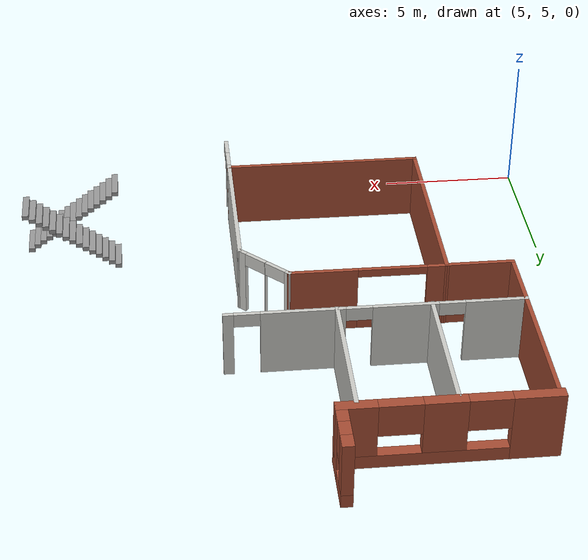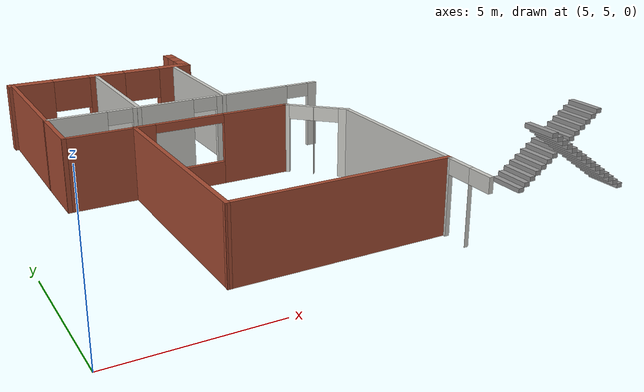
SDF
<sdf version="1.6">
 <model name="CVSSP">
  <pose>15.8584 5.8407 0 0 -0 0</pose>
  <link name="Stairs_0">
   <visual name="Stairs_0_Visual_0">
    <pose>5.00304 3.34162 0.083333 0 -0 1.5708</pose>
    <geometry><box><size>1.32315 0.233333 0.166667</size></box></geometry>
    <material>
     <script><uri>file://media/materials/scripts/gazebo.material</uri><name>Gazebo/Grey</name></script>
     <ambient>1 1 1 1</ambient>
    </material>
   </visual>
   <collision name="Stairs_0_Collision_0">
    <geometry><box><size>1.32315 0.233333 0.166667</size></box></geometry>
    <pose>5.00304 3.34162 0.083333 0 -0 1.5708</pose>
   </collision>
   <visual name="Stairs_0_Visual_1">
    <pose>5.23638 3.34162 0.25 0 -0 1.5708</pose>
    <geometry><box><size>1.32315 0.233333 0.166667</size></box></geometry>
    <material>
     <script><uri>file://media/materials/scripts/gazebo.material</uri><name>Gazebo/Grey</name></script>
     <ambient>1 1 1 1</ambient>
    </material>
   </visual>
   <collision name="Stairs_0_Collision_1">
    <geometry><box><size>1.32315 0.233333 0.166667</size></box></geometry>
    <pose>5.23638 3.34162 0.25 0 -0 1.5708</pose>
   </collision>
   <visual name="Stairs_0_Visual_2">
    <pose>5.46971 3.34162 0.416667 0 -0 1.5708</pose>
    <geometry><box><size>1.32315 0.233333 0.166667</size></box></geometry>
    <material>
     <script><uri>file://media/materials/scripts/gazebo.material</uri><name>Gazebo/Grey</name></script>
     <ambient>1 1 1 1</ambient>
    </material>
   </visual>
   <collision name="Stairs_0_Collision_2">
    <geometry><box><size>1.32315 0.233333 0.166667</size></box></geometry>
    <pose>5.46971 3.34162 0.416667 0 -0 1.5708</pose>
   </collision>
   <visual name="Stairs_0_Visual_3">
    <pose>5.70304 3.34162 0.583333 0 -0 1.5708</pose>
    <geometry><box><size>1.32315 0.233333 0.166667</size></box></geometry>
    <material>
     <script><uri>file://media/materials/scripts/gazebo.material</uri><name>Gazebo/Grey</name></script>
     <ambient>1 1 1 1</ambient>
    </material>
   </visual>
   <collision name="Stairs_0_Collision_3">
    <geometry><box><size>1.32315 0.233333 0.166667</size></box></geometry>
    <pose>5.70304 3.34162 0.583333 0 -0 1.5708</pose>
   </collision>
   <visual name="Stairs_0_Visual_4">
    <pose>5.93638 3.34162 0.75 0 -0 1.5708</pose>
    <geometry><box><size>1.32315 0.233333 0.166667</size></box></geometry>
    <material>
     <script><uri>file://media/materials/scripts/gazebo.material</uri><name>Gazebo/Grey</name></script>
     <ambient>1 1 1 1</ambient>
    </material>
   </visual>
   <collision name="Stairs_0_Collision_4">
    <geometry><box><size>1.32315 0.233333 0.166667</size></box></geometry>
    <pose>5.93638 3.34162 0.75 0 -0 1.5708</pose>
   </collision>
   <visual name="Stairs_0_Visual_5">
    <pose>6.16971 3.34162 0.916667 0 -0 1.5708</pose>
    <geometry><box><size>1.32315 0.233333 0.166667</size></box></geometry>
    <material>
     <script><uri>file://media/materials/scripts/gazebo.material</uri><name>Gazebo/Grey</name></script>
     <ambient>1 1 1 1</ambient>
    </material>
   </visual>
   <collision name="Stairs_0_Collision_5">
    <geometry><box><size>1.32315 0.233333 0.166667</size></box></geometry>
    <pose>6.16971 3.34162 0.916667 0 -0 1.5708</pose>
   </collision>
   <visual name="Stairs_0_Visual_6">
    <pose>6.40304 3.34162 1.08333 0 -0 1.5708</pose>
    <geometry><box><size>1.32315 0.233333 0.166667</size></box></geometry>
    <material>
     <script><uri>file://media/materials/scripts/gazebo.material</uri><name>Gazebo/Grey</name></script>
     <ambient>1 1 1 1</ambient>
    </material>
   </visual>
   <collision name="Stairs_0_Collision_6">
    <geometry><box><size>1.32315 0.233333 0.166667</size></box></geometry>
    <pose>6.40304 3.34162 1.08333 0 -0 1.5708</pose>
   </collision>
   <visual name="Stairs_0_Visual_7">
    <pose>6.63638 3.34162 1.25 0 -0 1.5708</pose>
    <geometry><box><size>1.32315 0.233333 0.166667</size></box></geometry>
    <material>
     <script><uri>file://media/materials/scripts/gazebo.material</uri><name>Gazebo/Grey</name></script>
     <ambient>1 1 1 1</ambient>
    </material>
   </visual>
   <collision name="Stairs_0_Collision_7">
    <geometry><box><size>1.32315 0.233333 0.166667</size></box></geometry>
    <pose>6.63638 3.34162 1.25 0 -0 1.5708</pose>
   </collision>
   <visual name="Stairs_0_Visual_8">
    <pose>6.86971 3.34162 1.41667 0 -0 1.5708</pose>
    <geometry><box><size>1.32315 0.233333 0.166667</size></box></geometry>
    <material>
     <script><uri>file://media/materials/scripts/gazebo.material</uri><name>Gazebo/Grey</name></script>
     <ambient>1 1 1 1</ambient>
    </material>
   </visual>
   <collision name="Stairs_0_Collision_8">
    <geometry><box><size>1.32315 0.233333 0.166667</size></box></geometry>
    <pose>6.86971 3.34162 1.41667 0 -0 1.5708</pose>
   </collision>
   <visual name="Stairs_0_Visual_9">
    <pose>7.10304 3.34162 1.58333 0 -0 1.5708</pose>
    <geometry><box><size>1.32315 0.233333 0.166667</size></box></geometry>
    <material>
     <script><uri>file://media/materials/scripts/gazebo.material</uri><name>Gazebo/Grey</name></script>
     <ambient>1 1 1 1</ambient>
    </material>
   </visual>
   <collision name="Stairs_0_Collision_9">
    <geometry><box><size>1.32315 0.233333 0.166667</size></box></geometry>
    <pose>7.10304 3.34162 1.58333 0 -0 1.5708</pose>
   </collision>
   <visual name="Stairs_0_Visual_10">
    <pose>7.33638 3.34162 1.75 0 -0 1.5708</pose>
    <geometry><box><size>1.32315 0.233333 0.166667</size></box></geometry>
    <material>
     <script><uri>file://media/materials/scripts/gazebo.material</uri><name>Gazebo/Grey</name></script>
     <ambient>1 1 1 1</ambient>
    </material>
   </visual>
   <collision name="Stairs_0_Collision_10">
    <geometry><box><size>1.32315 0.233333 0.166667</size></box></geometry>
    <pose>7.33638 3.34162 1.75 0 -0 1.5708</pose>
   </collision>
   <visual name="Stairs_0_Visual_11">
    <pose>7.56971 3.34162 1.91667 0 -0 1.5708</pose>
    <geometry><box><size>1.32315 0.233333 0.166667</size></box></geometry>
    <material>
     <script><uri>file://media/materials/scripts/gazebo.material</uri><name>Gazebo/Grey</name></script>
     <ambient>1 1 1 1</ambient>
    </material>
   </visual>
   <collision name="Stairs_0_Collision_11">
    <geometry><box><size>1.32315 0.233333 0.166667</size></box></geometry>
    <pose>7.56971 3.34162 1.91667 0 -0 1.5708</pose>
   </collision>
   <visual name="Stairs_0_Visual_12">
    <pose>7.80304 3.34162 2.08333 0 -0 1.5708</pose>
    <geometry><box><size>1.32315 0.233333 0.166667</size></box></geometry>
    <material>
     <script><uri>file://media/materials/scripts/gazebo.material</uri><name>Gazebo/Grey</name></script>
     <ambient>1 1 1 1</ambient>
    </material>
   </visual>
   <collision name="Stairs_0_Collision_12">
    <geometry><box><size>1.32315 0.233333 0.166667</size></box></geometry>
    <pose>7.80304 3.34162 2.08333 0 -0 1.5708</pose>
   </collision>
   <visual name="Stairs_0_Visual_13">
    <pose>8.03638 3.34162 2.25 0 -0 1.5708</pose>
    <geometry><box><size>1.32315 0.233333 0.166667</size></box></geometry>
    <material>
     <script><uri>file://media/materials/scripts/gazebo.material</uri><name>Gazebo/Grey</name></script>
     <ambient>1 1 1 1</ambient>
    </material>
   </visual>
   <collision name="Stairs_0_Collision_13">
    <geometry><box><size>1.32315 0.233333 0.166667</size></box></geometry>
    <pose>8.03638 3.34162 2.25 0 -0 1.5708</pose>
   </collision>
   <visual name="Stairs_0_Visual_14">
    <pose>8.26971 3.34162 2.41667 0 -0 1.5708</pose>
    <geometry><box><size>1.32315 0.233333 0.166667</size></box></geometry>
    <material>
     <script><uri>file://media/materials/scripts/gazebo.material</uri><name>Gazebo/Grey</name></script>
     <ambient>1 1 1 1</ambient>
    </material>
   </visual>
   <collision name="Stairs_0_Collision_14">
    <geometry><box><size>1.32315 0.233333 0.166667</size></box></geometry>
    <pose>8.26971 3.34162 2.41667 0 -0 1.5708</pose>
   </collision>
  </link>
  <link name="Stairs_1">
   <visual name="Stairs_1_Visual_0">
    <pose>8.27065 2.04368 0.083333 0 -0 -1.5708</pose>
    <geometry><box><size>1.279 0.233333 0.166667</size></box></geometry>
    <material>
     <script><uri>file://media/materials/scripts/gazebo.material</uri><name>Gazebo/Grey</name></script>
     <ambient>1 1 1 1</ambient>
    </material>
   </visual>
   <collision name="Stairs_1_Collision_0">
    <geometry><box><size>1.279 0.233333 0.166667</size></box></geometry>
    <pose>8.27065 2.04368 0.083333 0 -0 -1.5708</pose>
   </collision>
   <visual name="Stairs_1_Visual_1">
    <pose>8.03732 2.04368 0.25 0 -0 -1.5708</pose>
    <geometry><box><size>1.279 0.233333 0.166667</size></box></geometry>
    <material>
     <script><uri>file://media/materials/scripts/gazebo.material</uri><name>Gazebo/Grey</name></script>
     <ambient>1 1 1 1</ambient>
    </material>
   </visual>
   <collision name="Stairs_1_Collision_1">
    <geometry><box><size>1.279 0.233333 0.166667</size></box></geometry>
    <pose>8.03732 2.04368 0.25 0 -0 -1.5708</pose>
   </collision>
   <visual name="Stairs_1_Visual_2">
    <pose>7.80398 2.04368 0.416667 0 -0 -1.5708</pose>
    <geometry><box><size>1.279 0.233333 0.166667</size></box></geometry>
    <material>
     <script><uri>file://media/materials/scripts/gazebo.material</uri><name>Gazebo/Grey</name></script>
     <ambient>1 1 1 1</ambient>
    </material>
   </visual>
   <collision name="Stairs_1_Collision_2">
    <geometry><box><size>1.279 0.233333 0.166667</size></box></geometry>
    <pose>7.80398 2.04368 0.416667 0 -0 -1.5708</pose>
   </collision>
   <visual name="Stairs_1_Visual_3">
    <pose>7.57065 2.04368 0.583333 0 -0 -1.5708</pose>
    <geometry><box><size>1.279 0.233333 0.166667</size></box></geometry>
    <material>
     <script><uri>file://media/materials/scripts/gazebo.material</uri><name>Gazebo/Grey</name></script>
     <ambient>1 1 1 1</ambient>
    </material>
   </visual>
   <collision name="Stairs_1_Collision_3">
    <geometry><box><size>1.279 0.233333 0.166667</size></box></geometry>
    <pose>7.57065 2.04368 0.583333 0 -0 -1.5708</pose>
   </collision>
   <visual name="Stairs_1_Visual_4">
    <pose>7.33732 2.04368 0.75 0 -0 -1.5708</pose>
    <geometry><box><size>1.279 0.233333 0.166667</size></box></geometry>
    <material>
     <script><uri>file://media/materials/scripts/gazebo.material</uri><name>Gazebo/Grey</name></script>
     <ambient>1 1 1 1</ambient>
    </material>
   </visual>
   <collision name="Stairs_1_Collision_4">
    <geometry><box><size>1.279 0.233333 0.166667</size></box></geometry>
    <pose>7.33732 2.04368 0.75 0 -0 -1.5708</pose>
   </collision>
   <visual name="Stairs_1_Visual_5">
    <pose>7.10398 2.04368 0.916667 0 -0 -1.5708</pose>
    <geometry><box><size>1.279 0.233333 0.166667</size></box></geometry>
    <material>
     <script><uri>file://media/materials/scripts/gazebo.material</uri><name>Gazebo/Grey</name></script>
     <ambient>1 1 1 1</ambient>
    </material>
   </visual>
   <collision name="Stairs_1_Collision_5">
    <geometry><box><size>1.279 0.233333 0.166667</size></box></geometry>
    <pose>7.10398 2.04368 0.916667 0 -0 -1.5708</pose>
   </collision>
   <visual name="Stairs_1_Visual_6">
    <pose>6.87065 2.04368 1.08333 0 -0 -1.5708</pose>
    <geometry><box><size>1.279 0.233333 0.166667</size></box></geometry>
    <material>
     <script><uri>file://media/materials/scripts/gazebo.material</uri><name>Gazebo/Grey</name></script>
     <ambient>1 1 1 1</ambient>
    </material>
   </visual>
   <collision name="Stairs_1_Collision_6">
    <geometry><box><size>1.279 0.233333 0.166667</size></box></geometry>
    <pose>6.87065 2.04368 1.08333 0 -0 -1.5708</pose>
   </collision>
   <visual name="Stairs_1_Visual_7">
    <pose>6.63732 2.04368 1.25 0 -0 -1.5708</pose>
    <geometry><box><size>1.279 0.233333 0.166667</size></box></geometry>
    <material>
     <script><uri>file://media/materials/scripts/gazebo.material</uri><name>Gazebo/Grey</name></script>
     <ambient>1 1 1 1</ambient>
    </material>
   </visual>
   <collision name="Stairs_1_Collision_7">
    <geometry><box><size>1.279 0.233333 0.166667</size></box></geometry>
    <pose>6.63732 2.04368 1.25 0 -0 -1.5708</pose>
   </collision>
   <visual name="Stairs_1_Visual_8">
    <pose>6.40398 2.04368 1.41667 0 -0 -1.5708</pose>
    <geometry><box><size>1.279 0.233333 0.166667</size></box></geometry>
    <material>
     <script><uri>file://media/materials/scripts/gazebo.material</uri><name>Gazebo/Grey</name></script>
     <ambient>1 1 1 1</ambient>
    </material>
   </visual>
   <collision name="Stairs_1_Collision_8">
    <geometry><box><size>1.279 0.233333 0.166667</size></box></geometry>
    <pose>6.40398 2.04368 1.41667 0 -0 -1.5708</pose>
   </collision>
   <visual name="Stairs_1_Visual_9">
    <pose>6.17065 2.04368 1.58333 0 -0 -1.5708</pose>
    <geometry><box><size>1.279 0.233333 0.166667</size></box></geometry>
    <material>
     <script><uri>file://media/materials/scripts/gazebo.material</uri><name>Gazebo/Grey</name></script>
     <ambient>1 1 1 1</ambient>
    </material>
   </visual>
   <collision name="Stairs_1_Collision_9">
    <geometry><box><size>1.279 0.233333 0.166667</size></box></geometry>
    <pose>6.17065 2.04368 1.58333 0 -0 -1.5708</pose>
   </collision>
   <visual name="Stairs_1_Visual_10">
    <pose>5.93732 2.04368 1.75 0 -0 -1.5708</pose>
    <geometry><box><size>1.279 0.233333 0.166667</size></box></geometry>
    <material>
     <script><uri>file://media/materials/scripts/gazebo.material</uri><name>Gazebo/Grey</name></script>
     <ambient>1 1 1 1</ambient>
    </material>
   </visual>
   <collision name="Stairs_1_Collision_10">
    <geometry><box><size>1.279 0.233333 0.166667</size></box></geometry>
    <pose>5.93732 2.04368 1.75 0 -0 -1.5708</pose>
   </collision>
   <visual name="Stairs_1_Visual_11">
    <pose>5.70398 2.04368 1.91667 0 -0 -1.5708</pose>
    <geometry><box><size>1.279 0.233333 0.166667</size></box></geometry>
    <material>
     <script><uri>file://media/materials/scripts/gazebo.material</uri><name>Gazebo/Grey</name></script>
     <ambient>1 1 1 1</ambient>
    </material>
   </visual>
   <collision name="Stairs_1_Collision_11">
    <geometry><box><size>1.279 0.233333 0.166667</size></box></geometry>
    <pose>5.70398 2.04368 1.91667 0 -0 -1.5708</pose>
   </collision>
   <visual name="Stairs_1_Visual_12">
    <pose>5.47065 2.04368 2.08333 0 -0 -1.5708</pose>
    <geometry><box><size>1.279 0.233333 0.166667</size></box></geometry>
    <material>
     <script><uri>file://media/materials/scripts/gazebo.material</uri><name>Gazebo/Grey</name></script>
     <ambient>1 1 1 1</ambient>
    </material>
   </visual>
   <collision name="Stairs_1_Collision_12">
    <geometry><box><size>1.279 0.233333 0.166667</size></box></geometry>
    <pose>5.47065 2.04368 2.08333 0 -0 -1.5708</pose>
   </collision>
   <visual name="Stairs_1_Visual_13">
    <pose>5.23732 2.04368 2.25 0 -0 -1.5708</pose>
    <geometry><box><size>1.279 0.233333 0.166667</size></box></geometry>
    <material>
     <script><uri>file://media/materials/scripts/gazebo.material</uri><name>Gazebo/Grey</name></script>
     <ambient>1 1 1 1</ambient>
    </material>
   </visual>
   <collision name="Stairs_1_Collision_13">
    <geometry><box><size>1.279 0.233333 0.166667</size></box></geometry>
    <pose>5.23732 2.04368 2.25 0 -0 -1.5708</pose>
   </collision>
   <visual name="Stairs_1_Visual_14">
    <pose>5.00398 2.04368 2.41667 0 -0 -1.5708</pose>
    <geometry><box><size>1.279 0.233333 0.166667</size></box></geometry>
    <material>
     <script><uri>file://media/materials/scripts/gazebo.material</uri><name>Gazebo/Grey</name></script>
     <ambient>1 1 1 1</ambient>
    </material>
   </visual>
   <collision name="Stairs_1_Collision_14">
    <geometry><box><size>1.279 0.233333 0.166667</size></box></geometry>
    <pose>5.00398 2.04368 2.41667 0 -0 -1.5708</pose>
   </collision>
  </link>
  <link name="Wall_0">
   <collision name="Wall_0_Collision">
    <geometry><box><size>7.30534 0.15 2.5</size></box></geometry>
    <pose>0 0 1.25 0 -0 0</pose>
   </collision>
   <visual name="Wall_0_Visual">
    <pose>0 0 1.25 0 -0 0</pose>
    <geometry><box><size>7.30534 0.15 2.5</size></box></geometry>
    <material>
     <script><uri>file://media/materials/scripts/gazebo.material</uri><name>Gazebo/Bricks</name></script>
     <ambient>1 1 1 1</ambient>
    </material>
   </visual>
   <pose>-6.50608 4.87105 0 0 0 -1.57292</pose>
  </link>
  <link name="Wall_1">
   <collision name="Wall_1_Collision">
    <geometry><box><size>7.29881 0.15 2.5</size></box></geometry>
    <pose>0 0 1.25 0 -0 0</pose>
   </collision>
   <visual name="Wall_1_Visual">
    <pose>0 0 1.25 0 -0 0</pose>
    <geometry><box><size>7.29881 0.15 2.5</size></box></geometry>
    <material>
     <script><uri>file://media/materials/scripts/gazebo.material</uri><name>Gazebo/Bricks</name></script>
     <ambient>1 1 1 1</ambient>
    </material>
   </visual>
   <pose>-2.93929 1.28682 0 0 0 -0.001839</pose>
  </link>
  <link name="Wall_134">
   <pose>-3.71148 10.6102 0 0 -0 3.14159</pose>
   <visual name="Wall_134_Visual_0">
    <pose>-5.01383 0 1.25 0 -0 0</pose>
    <geometry><box><size>0.367986 0.15 2.5</size></box></geometry>
    <material>
     <script><uri>file://media/materials/scripts/gazebo.material</uri><name>Gazebo/CeilingTiled</name></script>
     <ambient>1 1 1 1</ambient>
    </material>
   </visual>
   <collision name="Wall_134_Collision_0">
    <geometry><box><size>0.367986 0.15 2.5</size></box></geometry>
    <pose>-5.01383 0 1.25 0 -0 0</pose>
   </collision>
   <visual name="Wall_134_Visual_1">
    <pose>-2.48136 0 1.25 0 -0 0</pose>
    <geometry><box><size>2.89696 0.15 2.5</size></box></geometry>
    <material>
     <script><uri>file://media/materials/scripts/gazebo.material</uri><name>Gazebo/CeilingTiled</name></script>
     <ambient>1 1 1 1</ambient>
    </material>
   </visual>
   <collision name="Wall_134_Collision_1">
    <geometry><box><size>2.89696 0.15 2.5</size></box></geometry>
    <pose>-2.48136 0 1.25 0 -0 0</pose>
   </collision>
   <visual name="Wall_134_Visual_2">
    <pose>1.00237 0 1.25 0 -0 0</pose>
    <geometry><box><size>2.27049 0.15 2.5</size></box></geometry>
    <material>
     <script><uri>file://media/materials/scripts/gazebo.material</uri><name>Gazebo/CeilingTiled</name></script>
     <ambient>1 1 1 1</ambient>
    </material>
   </visual>
   <collision name="Wall_134_Collision_2">
    <geometry><box><size>2.27049 0.15 2.5</size></box></geometry>
    <pose>1.00237 0 1.25 0 -0 0</pose>
   </collision>
   <visual name="Wall_134_Visual_3">
    <pose>4.11772 0 1.25 0 -0 0</pose>
    <geometry><box><size>2.16021 0.15 2.5</size></box></geometry>
    <material>
     <script><uri>file://media/materials/scripts/gazebo.material</uri><name>Gazebo/CeilingTiled</name></script>
     <ambient>1 1 1 1</ambient>
    </material>
   </visual>
   <collision name="Wall_134_Collision_3">
    <geometry><box><size>2.16021 0.15 2.5</size></box></geometry>
    <pose>4.11772 0 1.25 0 -0 0</pose>
   </collision>
   <visual name="Wall_134_Visual_4">
    <pose>-4.37984 0 2.25 0 -0 0</pose>
    <geometry><box><size>0.9 0.15 0.5</size></box></geometry>
    <material>
     <script><uri>file://media/materials/scripts/gazebo.material</uri><name>Gazebo/CeilingTiled</name></script>
     <ambient>1 1 1 1</ambient>
    </material>
   </visual>
   <collision name="Wall_134_Collision_4">
    <geometry><box><size>0.9 0.15 0.5</size></box></geometry>
    <pose>-4.37984 0 2.25 0 -0 0</pose>
   </collision>
   <visual name="Wall_134_Visual_5">
    <pose>-0.582875 0 2.25 0 -0 0</pose>
    <geometry><box><size>0.9 0.15 0.5</size></box></geometry>
    <material>
     <script><uri>file://media/materials/scripts/gazebo.material</uri><name>Gazebo/CeilingTiled</name></script>
     <ambient>1 1 1 1</ambient>
    </material>
   </visual>
   <collision name="Wall_134_Collision_5">
    <geometry><box><size>0.9 0.15 0.5</size></box></geometry>
    <pose>-0.582875 0 2.25 0 -0 0</pose>
   </collision>
   <visual name="Wall_134_Visual_6">
    <pose>2.58761 0 2.25 0 -0 0</pose>
    <geometry><box><size>0.9 0.15 0.5</size></box></geometry>
    <material>
     <script><uri>file://media/materials/scripts/gazebo.material</uri><name>Gazebo/CeilingTiled</name></script>
     <ambient>1 1 1 1</ambient>
    </material>
   </visual>
   <collision name="Wall_134_Collision_6">
    <geometry><box><size>0.9 0.15 0.5</size></box></geometry>
    <pose>2.58761 0 2.25 0 -0 0</pose>
   </collision>
  </link>
  <link name="Wall_135">
   <collision name="Wall_135_Collision">
    <geometry><box><size>5.14565 0.15 2.5</size></box></geometry>
    <pose>0 0 1.25 0 -0 0</pose>
   </collision>
   <visual name="Wall_135_Visual">
    <pose>0 0 1.25 0 -0 0</pose>
    <geometry><box><size>5.14565 0.15 2.5</size></box></geometry>
    <material>
     <script><uri>file://media/materials/scripts/gazebo.material</uri><name>Gazebo/Bricks</name></script>
     <ambient>1 1 1 1</ambient>
    </material>
   </visual>
   <pose>-8.82585 13.1077 0 0 -0 1.56741</pose>
  </link>
  <link name="Wall_136">
   <pose>-5.3489 15.6053 0 0 -0 0</pose>
   <visual name="Wall_136_Visual_0">
    <pose>-2.82211 0 1.25 0 -0 0</pose>
    <geometry><box><size>1.69277 0.4 2.5</size></box></geometry>
    <material>
     <script><uri>file://media/materials/scripts/gazebo.material</uri><name>Gazebo/Bricks</name></script>
     <ambient>1 1 1 1</ambient>
    </material>
   </visual>
   <collision name="Wall_136_Collision_0">
    <geometry><box><size>1.69277 0.4 2.5</size></box></geometry>
    <pose>-2.82211 0 1.25 0 -0 0</pose>
   </collision>
   <visual name="Wall_136_Visual_1">
    <pose>0.846386 0 0.25 0 -0 0</pose>
    <geometry><box><size>5.64423 0.4 0.5</size></box></geometry>
    <material>
     <script><uri>file://media/materials/scripts/gazebo.material</uri><name>Gazebo/Bricks</name></script>
     <ambient>1 1 1 1</ambient>
    </material>
   </visual>
   <collision name="Wall_136_Collision_1">
    <geometry><box><size>5.64423 0.4 0.5</size></box></geometry>
    <pose>0.846386 0 0.25 0 -0 0</pose>
   </collision>
   <visual name="Wall_136_Visual_2">
    <pose>0.146512 0 1.5 0 -0 0</pose>
    <geometry><box><size>1.42709 0.4 2</size></box></geometry>
    <material>
     <script><uri>file://media/materials/scripts/gazebo.material</uri><name>Gazebo/Bricks</name></script>
     <ambient>1 1 1 1</ambient>
    </material>
   </visual>
   <collision name="Wall_136_Collision_2">
    <geometry><box><size>1.42709 0.4 2</size></box></geometry>
    <pose>0.146512 0 1.5 0 -0 0</pose>
   </collision>
   <visual name="Wall_136_Visual_3">
    <pose>2.98602 0 1.5 0 -0 0</pose>
    <geometry><box><size>1.36497 0.4 2</size></box></geometry>
    <material>
     <script><uri>file://media/materials/scripts/gazebo.material</uri><name>Gazebo/Bricks</name></script>
     <ambient>1 1 1 1</ambient>
    </material>
   </visual>
   <collision name="Wall_136_Collision_3">
    <geometry><box><size>1.36497 0.4 2</size></box></geometry>
    <pose>2.98602 0 1.5 0 -0 0</pose>
   </collision>
   <visual name="Wall_136_Visual_4">
    <pose>-1.27138 0 1.9 0 -0 0</pose>
    <geometry><box><size>1.4087 0.4 1.2</size></box></geometry>
    <material>
     <script><uri>file://media/materials/scripts/gazebo.material</uri><name>Gazebo/Bricks</name></script>
     <ambient>1 1 1 1</ambient>
    </material>
   </visual>
   <collision name="Wall_136_Collision_4">
    <geometry><box><size>1.4087 0.4 1.2</size></box></geometry>
    <pose>-1.27138 0 1.9 0 -0 0</pose>
   </collision>
   <visual name="Wall_136_Visual_5">
    <pose>1.5818 0 1.9 0 -0 0</pose>
    <geometry><box><size>1.44348 0.4 1.2</size></box></geometry>
    <material>
     <script><uri>file://media/materials/scripts/gazebo.material</uri><name>Gazebo/Bricks</name></script>
     <ambient>1 1 1 1</ambient>
    </material>
   </visual>
   <collision name="Wall_136_Collision_5">
    <geometry><box><size>1.44348 0.4 1.2</size></box></geometry>
    <pose>1.5818 0 1.9 0 -0 0</pose>
   </collision>
  </link>
  <link name="Wall_137">
   <pose>-1.8804 16.4578 0 0 -0 1.5708</pose>
   <visual name="Wall_137_Visual_0">
    <pose>-0.587794 0 1.25 0 -0 0</pose>
    <geometry><box><size>0.929411 0.4 2.5</size></box></geometry>
    <material>
     <script><uri>file://media/materials/scripts/gazebo.material</uri><name>Gazebo/Bricks</name></script>
     <ambient>1 1 1 1</ambient>
    </material>
   </visual>
   <collision name="Wall_137_Collision_0">
    <geometry><box><size>0.929411 0.4 2.5</size></box></geometry>
    <pose>-0.587794 0 1.25 0 -0 0</pose>
   </collision>
   <visual name="Wall_137_Visual_1">
    <pose>0.464706 0 0.25 0 -0 0</pose>
    <geometry><box><size>1.17559 0.4 0.5</size></box></geometry>
    <material>
     <script><uri>file://media/materials/scripts/gazebo.material</uri><name>Gazebo/Bricks</name></script>
     <ambient>1 1 1 1</ambient>
    </material>
   </visual>
   <collision name="Wall_137_Collision_1">
    <geometry><box><size>1.17559 0.4 0.5</size></box></geometry>
    <pose>0.464706 0 0.25 0 -0 0</pose>
   </collision>
   <visual name="Wall_137_Visual_2">
    <pose>0.777749 0 1.5 0 -0 0</pose>
    <geometry><box><size>0.549502 0.4 2</size></box></geometry>
    <material>
     <script><uri>file://media/materials/scripts/gazebo.material</uri><name>Gazebo/Bricks</name></script>
     <ambient>1 1 1 1</ambient>
    </material>
   </visual>
   <collision name="Wall_137_Collision_2">
    <geometry><box><size>0.549502 0.4 2</size></box></geometry>
    <pose>0.777749 0 1.5 0 -0 0</pose>
   </collision>
   <visual name="Wall_137_Visual_3">
    <pose>0.189955 0 1.9 0 -0 0</pose>
    <geometry><box><size>0.626087 0.4 1.2</size></box></geometry>
    <material>
     <script><uri>file://media/materials/scripts/gazebo.material</uri><name>Gazebo/Bricks</name></script>
     <ambient>1 1 1 1</ambient>
    </material>
   </visual>
   <collision name="Wall_137_Collision_3">
    <geometry><box><size>0.626087 0.4 1.2</size></box></geometry>
    <pose>0.189955 0 1.9 0 -0 0</pose>
   </collision>
  </link>
  <link name="Wall_142">
   <collision name="Wall_142_Collision">
    <geometry><box><size>2.33134 0.15 2.5</size></box></geometry>
    <pose>0 0 1.25 0 -0 0</pose>
   </collision>
   <visual name="Wall_142_Visual">
    <pose>0 0 1.25 0 -0 0</pose>
    <geometry><box><size>2.33134 0.15 2.5</size></box></geometry>
    <material>
     <script><uri>file://media/materials/scripts/gazebo.material</uri><name>Gazebo/Bricks</name></script>
     <ambient>1 1 1 1</ambient>
    </material>
   </visual>
   <pose>-8.83407 9.51952 0 0 0 -1.57058</pose>
  </link>
  <link name="Wall_143">
   <collision name="Wall_143_Collision">
    <geometry><box><size>2.48535 0.15 2.5</size></box></geometry>
    <pose>0 0 1.25 0 -0 0</pose>
   </collision>
   <visual name="Wall_143_Visual">
    <pose>0 0 1.25 0 -0 0</pose>
    <geometry><box><size>2.48535 0.15 2.5</size></box></geometry>
    <material>
     <script><uri>file://media/materials/scripts/gazebo.material</uri><name>Gazebo/Bricks</name></script>
     <ambient>1 1 1 1</ambient>
    </material>
   </visual>
   <pose>-7.66615 8.4288 0 0 0 -7.1e-05</pose>
  </link>
  <link name="Wall_151">
   <collision name="Wall_151_Collision">
    <geometry><box><size>5 0.15 2.5</size></box></geometry>
    <pose>0 0 1.25 0 -0 0</pose>
   </collision>
   <visual name="Wall_151_Visual">
    <pose>0 0 1.25 0 -0 0</pose>
    <geometry><box><size>5 0.15 2.5</size></box></geometry>
    <material>
     <script><uri>file://media/materials/scripts/gazebo.material</uri><name>Gazebo/CeilingTiled</name></script>
     <ambient>1 1 1 1</ambient>
    </material>
   </visual>
   <pose>-2.3817 13.0166 0 0 -0 1.5708</pose>
  </link>
  <link name="Wall_153">
   <collision name="Wall_153_Collision">
    <geometry><box><size>5 0.15 2.5</size></box></geometry>
    <pose>0 0 1.25 0 -0 0</pose>
   </collision>
   <visual name="Wall_153_Visual">
    <pose>0 0 1.25 0 -0 0</pose>
    <geometry><box><size>5 0.15 2.5</size></box></geometry>
    <material>
     <script><uri>file://media/materials/scripts/gazebo.material</uri><name>Gazebo/CeilingTiled</name></script>
     <ambient>1 1 1 1</ambient>
    </material>
   </visual>
   <pose>-5.61782 13.0166 0 0 -0 1.5708</pose>
  </link>
  <link name="Wall_17">
   <pose>0.635105 0.355245 0 0 0 -1.5708</pose>
   <visual name="Wall_17_Visual_0">
    <pose>-0.886221 0 1.25 0 -0 0</pose>
    <geometry><box><size>0.227558 0.15 2.5</size></box></geometry>
    <material>
     <script><uri>file://media/materials/scripts/gazebo.material</uri><name>Gazebo/CeilingTiled</name></script>
     <ambient>1 1 1 1</ambient>
    </material>
   </visual>
   <collision name="Wall_17_Collision_0">
    <geometry><box><size>0.227558 0.15 2.5</size></box></geometry>
    <pose>-0.886221 0 1.25 0 -0 0</pose>
   </collision>
   <visual name="Wall_17_Visual_1">
    <pose>0.127558 0 1.25 0 -0 0</pose>
    <geometry><box><size>0.0001 0.15 2.5</size></box></geometry>
    <material>
     <script><uri>file://media/materials/scripts/gazebo.material</uri><name>Gazebo/CeilingTiled</name></script>
     <ambient>1 1 1 1</ambient>
    </material>
   </visual>
   <collision name="Wall_17_Collision_1">
    <geometry><box><size>0.0001 0.15 2.5</size></box></geometry>
    <pose>0.127558 0 1.25 0 -0 0</pose>
   </collision>
   <visual name="Wall_17_Visual_2">
    <pose>-0.322442 0 2.25 0 -0 0</pose>
    <geometry><box><size>0.9 0.15 0.5</size></box></geometry>
    <material>
     <script><uri>file://media/materials/scripts/gazebo.material</uri><name>Gazebo/CeilingTiled</name></script>
     <ambient>1 1 1 1</ambient>
    </material>
   </visual>
   <collision name="Wall_17_Collision_2">
    <geometry><box><size>0.9 0.15 0.5</size></box></geometry>
    <pose>-0.322442 0 2.25 0 -0 0</pose>
   </collision>
   <visual name="Wall_17_Visual_3">
    <pose>0.563779 0 2.25 0 -0 0</pose>
    <geometry><box><size>0.872442 0.15 0.5</size></box></geometry>
    <material>
     <script><uri>file://media/materials/scripts/gazebo.material</uri><name>Gazebo/CeilingTiled</name></script>
     <ambient>1 1 1 1</ambient>
    </material>
   </visual>
   <collision name="Wall_17_Collision_3">
    <geometry><box><size>0.872442 0.15 0.5</size></box></geometry>
    <pose>0.563779 0 2.25 0 -0 0</pose>
   </collision>
  </link>
  <link name="Wall_2">
   <collision name="Wall_2_Collision">
    <geometry><box><size>5.75 0.15 2.5</size></box></geometry>
    <pose>0 0 1.25 0 -0 0</pose>
   </collision>
   <visual name="Wall_2_Visual">
    <pose>0 0 1.25 0 -0 0</pose>
    <geometry><box><size>5.75 0.15 2.5</size></box></geometry>
    <material>
     <script><uri>file://media/materials/scripts/gazebo.material</uri><name>Gazebo/CeilingTiled</name></script>
     <ambient>1 1 1 1</ambient>
    </material>
   </visual>
   <pose>0.635105 4.08024 0 0 -0 1.5708</pose>
  </link>
  <link name="Wall_6">
   <pose>-0.170502 7.65216 0 0 -0 2.37755</pose>
   <visual name="Wall_6_Visual_0">
    <pose>-0.997511 0 1.25 0 -0 0</pose>
    <geometry><box><size>0.386438 0.15 2.5</size></box></geometry>
    <material>
     <script><uri>file://media/materials/scripts/gazebo.material</uri><name>Gazebo/CeilingTiled</name></script>
     <ambient>1 1 1 1</ambient>
    </material>
   </visual>
   <collision name="Wall_6_Collision_0">
    <geometry><box><size>0.386438 0.15 2.5</size></box></geometry>
    <pose>-0.997511 0 1.25 0 -0 0</pose>
   </collision>
   <visual name="Wall_6_Visual_1">
    <pose>0.074955 0 1.25 0 -0 0</pose>
    <geometry><box><size>0.021926 0.15 2.5</size></box></geometry>
    <material>
     <script><uri>file://media/materials/scripts/gazebo.material</uri><name>Gazebo/CeilingTiled</name></script>
     <ambient>1 1 1 1</ambient>
    </material>
   </visual>
   <collision name="Wall_6_Collision_1">
    <geometry><box><size>0.021926 0.15 2.5</size></box></geometry>
    <pose>0.074955 0 1.25 0 -0 0</pose>
   </collision>
   <visual name="Wall_6_Visual_2">
    <pose>1.07082 0 1.25 0 -0 0</pose>
    <geometry><box><size>0.239818 0.15 2.5</size></box></geometry>
    <material>
     <script><uri>file://media/materials/scripts/gazebo.material</uri><name>Gazebo/CeilingTiled</name></script>
     <ambient>1 1 1 1</ambient>
    </material>
   </visual>
   <collision name="Wall_6_Collision_2">
    <geometry><box><size>0.239818 0.15 2.5</size></box></geometry>
    <pose>1.07082 0 1.25 0 -0 0</pose>
   </collision>
   <visual name="Wall_6_Visual_3">
    <pose>-0.37015 0 2.25 0 -0 0</pose>
    <geometry><box><size>0.868283 0.15 0.5</size></box></geometry>
    <material>
     <script><uri>file://media/materials/scripts/gazebo.material</uri><name>Gazebo/CeilingTiled</name></script>
     <ambient>1 1 1 1</ambient>
    </material>
   </visual>
   <collision name="Wall_6_Collision_3">
    <geometry><box><size>0.868283 0.15 0.5</size></box></geometry>
    <pose>-0.37015 0 2.25 0 -0 0</pose>
   </collision>
   <visual name="Wall_6_Visual_4">
    <pose>0.518415 0 2.25 0 -0 0</pose>
    <geometry><box><size>0.864994 0.15 0.5</size></box></geometry>
    <material>
     <script><uri>file://media/materials/scripts/gazebo.material</uri><name>Gazebo/CeilingTiled</name></script>
     <ambient>1 1 1 1</ambient>
    </material>
   </visual>
   <collision name="Wall_6_Collision_4">
    <geometry><box><size>0.864994 0.15 0.5</size></box></geometry>
    <pose>0.518415 0 2.25 0 -0 0</pose>
   </collision>
  </link>
  <link name="Wall_7">
   <pose>-3.73729 8.43639 0 0 -0 3.13713</pose>
   <visual name="Wall_7_Visual_0">
    <pose>-1.5983 0 1.25 0 -0 0</pose>
    <geometry><box><size>2.47577 0.15 2.5</size></box></geometry>
    <material>
     <script><uri>file://media/materials/scripts/gazebo.material</uri><name>Gazebo/Bricks</name></script>
     <ambient>1 1 1 1</ambient>
    </material>
   </visual>
   <collision name="Wall_7_Collision_0">
    <geometry><box><size>2.47577 0.15 2.5</size></box></geometry>
    <pose>-1.5983 0 1.25 0 -0 0</pose>
   </collision>
   <visual name="Wall_7_Visual_1">
    <pose>1.23788 0 0.4 0 -0 0</pose>
    <geometry><box><size>3.19661 0.15 0.8</size></box></geometry>
    <material>
     <script><uri>file://media/materials/scripts/gazebo.material</uri><name>Gazebo/Bricks</name></script>
     <ambient>1 1 1 1</ambient>
    </material>
   </visual>
   <collision name="Wall_7_Collision_1">
    <geometry><box><size>3.19661 0.15 0.8</size></box></geometry>
    <pose>1.23788 0 0.4 0 -0 0</pose>
   </collision>
   <visual name="Wall_7_Visual_2">
    <pose>2.45088 0 1.65 0 -0 0</pose>
    <geometry><box><size>0.770606 0.15 1.7</size></box></geometry>
    <material>
     <script><uri>file://media/materials/scripts/gazebo.material</uri><name>Gazebo/Bricks</name></script>
     <ambient>1 1 1 1</ambient>
    </material>
   </visual>
   <collision name="Wall_7_Collision_2">
    <geometry><box><size>0.770606 0.15 1.7</size></box></geometry>
    <pose>2.45088 0 1.65 0 -0 0</pose>
   </collision>
   <visual name="Wall_7_Visual_3">
    <pose>0.852581 0 2.35 0 -0 0</pose>
    <geometry><box><size>2.426 0.15 0.3</size></box></geometry>
    <material>
     <script><uri>file://media/materials/scripts/gazebo.material</uri><name>Gazebo/Bricks</name></script>
     <ambient>1 1 1 1</ambient>
    </material>
   </visual>
   <collision name="Wall_7_Collision_3">
    <geometry><box><size>2.426 0.15 0.3</size></box></geometry>
    <pose>0.852581 0 2.35 0 -0 0</pose>
   </collision>
  </link>
  <static>1</static>
 </model>
</sdf>
